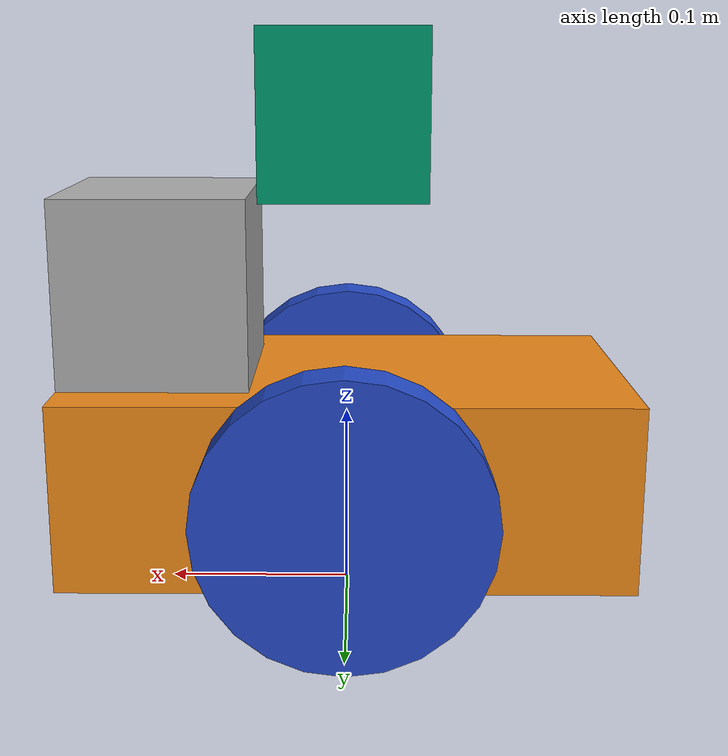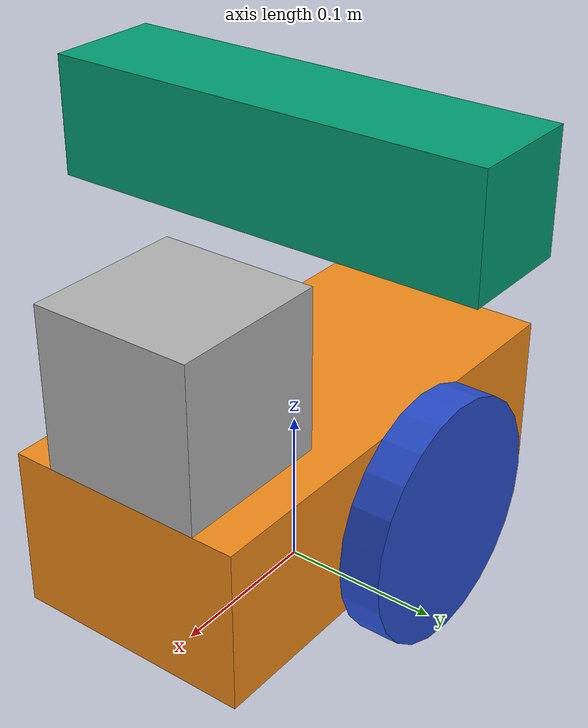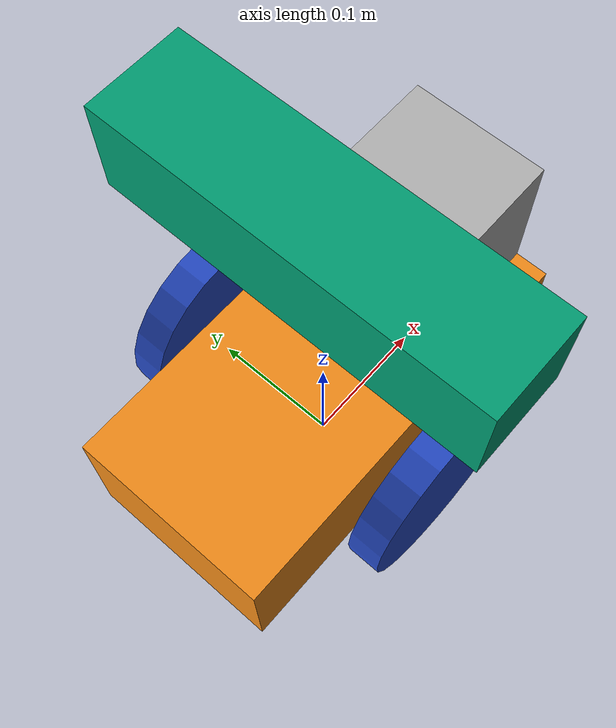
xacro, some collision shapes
<?xml version="1.0"?>
<!--
    - Base      : isgmrobot
    - 3d Sensor : kinect
-->
<robot name="isgmrobot" xmlns:xacro="http://ros.org/wiki/xacro">

  <xacro:include filename="$(find mybot_description)/urdf/mybot.xacro"/>
  <xacro:include filename="$(find mybot_description)/urdf/sensors/kinect.urdf.xacro"/>

  <xacro:sensor_kinect parent="base_link"/>
</robot>

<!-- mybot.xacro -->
<robot name="myrobot" xmlns:xacro="http://www.ros.org/wiki/xacro">

  <xacro:property name="cameraSize" value="0.05"/>
  <xacro:property name="cameraMass" value="0.15"/>
  <xacro:property name="wheeldiam" value="0.15" />
  <xacro:property name="wheel_separation" value="0.20"/>
  <xacro:property name="M_PI" value="3.1415926535897931" />
  <xacro:property name="chassis_len" value="0.3" />

  <xacro:include filename="$(find mybot_description)/urdf/materials.xacro" />
  <xacro:include filename="$(find mybot_description)/urdf/mybot.gazebo.xacro" />

  <link name="base_link" />

  <!-- for robot base frame -->
  <link name='chassis'>

    <visual>
      <origin xyz="0 0 0" rpy="0 0 0"/>
      <geometry>
        <box size="${chassis_len} ${wheel_separation - 0.05} .1"/>
      </geometry>
      <material name="orange"/>
    </visual>

    <collision>
      <geometry>
        <box size="${chassis_len} ${wheel_separation - 0.05} .1"/>
      </geometry>
    </collision>

    <inertial>
      <mass value="15.0"/>
      <inertia
          ixx="0.5" ixy="0" ixz="0"
          iyy="1.0" iyz="0"
          izz="0.1"
      />
    </inertial>
  </link>

  <joint name="base_to_chassis_joint" type="fixed">
    <parent link="base_link"/>
    <child link="chassis"/>
    <origin xyz="0 0 ${wheeldiam/2}"/>
  </joint>

<!-- for caster -->
  <xacro:macro name="caster_visual" params="prefix reflect">
    <link name='${prefix}_caster_visual'>
      <visual>
        <geometry>
          <sphere radius="${wheeldiam/4}"/>
        </geometry>
      </visual>

      <collision>
        <geometry>
          <sphere radius="${wheeldiam/4}"/>
        </geometry>
        <surface>
          <friction>
            <ode>
              <mu>0</mu>
              <mu2>0</mu2>
              <slip1>1.0</slip1>
              <slip2>1.0</slip2>
            </ode>
          </friction>
        </surface>
      </collision>

      <inertial>
        <mass value="0.1"/>
        <origin xyz="0.0 0 0.1" rpy="0 0 0"/>
        <inertia
            ixx="0.5" ixy="0" ixz="0"
            iyy="1.0" iyz="0"
            izz="0.1"
        />
      </inertial>
    </link>

    <joint name="${prefix}_chassis_joint" type="fixed">
        <parent link="chassis"/>
        <child link="${prefix}_caster_visual"/>
        <origin xyz="${reflect*wheel_separation/2} 0 -${wheeldiam/4}"/>
    </joint>
  </xacro:macro>

  <xacro:caster_visual prefix="front" reflect="1"/>
  <xacro:caster_visual prefix="back" reflect="-1"/>

<!-- for wheel -->
  <xacro:macro name="wheel" params="prefix reflect">

    <link name="${prefix}_wheel">
      <visual>
        <origin xyz="0 0 0" rpy="${M_PI/2} 0 0"/>
        <geometry>
          <cylinder radius="${wheeldiam/2}" length="0.025"/>
        </geometry>
        <material name="blue"/>
      </visual>

      <collision>
        <origin xyz="0 0 0" rpy="${M_PI/2} 0 0"/>
        <geometry>
          <cylinder radius="${wheeldiam/2}" length="0.05"/>
        </geometry>
      </collision>

      <inertial>
        <origin xyz="0 0 0" rpy="${M_PI/2} 0 0"/>
        <mass value="2.5"/>
        <cylinder_inertia m="5" r="0.1" h="0.05"/>
        <inertia
          ixx="1.0" ixy="0.0" ixz="0.0"
          iyy="1.0" iyz="0.0"
          izz="1.0"/>
      </inertial>
    </link>

    <joint name="${prefix}_wheel_hinge" type="continuous">
      <origin xyz="0 ${reflect*wheel_separation/2} 0" rpy="0 0 0"/>
      <child link="${prefix}_wheel"/>
      <parent link="chassis"/>
      <axis xyz="0 1 0" rpy="0 0 0"/>
      <limit effort="100" velocity="100"/>
      <joint_properties damping="0.0" friction="0.0"/>
    </joint>

  </xacro:macro>

  <xacro:wheel prefix="right" reflect="-1" />
  <xacro:wheel prefix="left" reflect="1" />

  <!-- for camera  -->
  <link name="camera">
    <collision>
      <origin xyz="0 0 0" rpy="0 0 0"/>
      <geometry>
        <box size="${cameraSize} ${cameraSize} ${cameraSize}"/>
      </geometry>
    </collision>

    <visual>
      <origin xyz="0 0 0" rpy="0 0 0"/>
      <geometry>
        <box size="${cameraSize} ${cameraSize} ${cameraSize}"/>
      </geometry>
      <material name="green"/>
    </visual>

    <inertial>
      <mass value="${cameraMass}" />
      <origin xyz="0 0 0" rpy="0 0 0"/>
      <box_inertia m="${cameraMass}" x="${cameraSize}" y="${cameraSize}" z="${cameraSize}" />
      <inertia ixx="1e-6" ixy="0" ixz="0" iyy="1e-6" iyz="0" izz="1e-6" />
    </inertial>

  </link>

  <joint name="camera_joint" type="fixed">
    <axis xyz="0 1 0" />
    <origin xyz="${wheel_separation/2} 0 ${0.05 + cameraSize/2}" rpy="0 0 0"/>
    <parent link="chassis"/>
    <child link="camera"/>
  </joint>

  <!-- Hokuyo Laser -->
  <link name="hokuyo">
    <visual>
      <origin xyz="0 0 0" rpy="0 0 0"/>
      <geometry>
        <mesh filename="package://mybot_description/meshes/hokuyo.dae"/>
      </geometry>
    </visual>

    <collision>
      <origin xyz="0 0 0" rpy="0 0 0"/>
      <geometry>
        <box size="0.1 0.1 0.1"/>
      </geometry>
    </collision>

    <inertial>
      <mass value="1e-5" />
      <origin xyz="0 0 0" rpy="0 0 0"/>
      <inertia ixx="1e-6" ixy="0" ixz="0" iyy="1e-6" iyz="0" izz="1e-6" />
    </inertial>

  </link>

  <joint name="hokuyo_joint" type="fixed">
    <axis xyz="0 1 0" />
    <origin xyz="${wheel_separation/2} 0 ${0.1}" rpy="0 0 0"/>
    <parent link="chassis"/>
    <child link="hokuyo"/>
  </joint>

</robot>

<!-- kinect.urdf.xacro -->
<robot name="sensor_kinect" xmlns:xacro="http://ros.org/wiki/xacro">
  <xacro:include filename="$(find mybot_description)/urdf/sensors/kinect_camera_gazebo.urdf.xacro"/>
  <xacro:include filename="$(find mybot_description)/urdf/sensors/kinect_camera_properties.urdf.xacro"/>

  <xacro:property name="kinect_cam_py" value="-0.0125"/>
  <!-- Parameterised in part by the values in turtlebot_properties.urdf.xacro -->
  <xacro:macro name="sensor_kinect" params="parent">
    <joint name="camera_rgb_joint" type="fixed">
      <origin xyz="${cam_px} ${kinect_cam_py} ${cam_pz}" rpy="${cam_or} ${cam_op} ${cam_oy}"/>
      <parent link="${parent}"/>
      <child link="camera_rgb_frame" />
    </joint>
    <link name="camera_rgb_frame"/>

    <joint name="camera_rgb_optical_joint" type="fixed">
      <origin xyz="0 0 0" rpy="${-M_PI/2} 0 ${-M_PI/2}" />
      <parent link="camera_rgb_frame" />
      <child link="camera_rgb_optical_frame" />
    </joint>
    <link name="camera_rgb_optical_frame"/>

    <joint name="camera_joint" type="fixed">
      <origin xyz="0 ${-kinect_cam_py} -0.016" rpy="0 0 0"/>
      <parent link="camera_rgb_frame"/>
      <child link="camera_link"/>
    </joint>
      <link name="camera_link">
      <visual>
       <origin xyz="0 0 0" rpy="0 0 ${M_PI/2}"/>
        <geometry>
         <mesh filename="package://mybot_description/meshes/sensors/kinect.dae"/>
        </geometry>
      </visual>
  	  <collision>
        <origin xyz="0.0 0.0 0.0" rpy="0 0 0"/>
  	    <geometry>
  	      <box size="0.07271 0.27794 0.073"/>
  	    </geometry>
  	  </collision>
      <inertial>
        <mass value="0.564" />
        <origin xyz="0 0 0" />
        <inertia ixx="0.003881243" ixy="0.0" ixz="0.0"
                 iyy="0.000498940" iyz="0.0"
                 izz="0.003879257" />
      </inertial>
    </link>

    <joint name="camera_depth_joint" type="fixed">
      <origin xyz="0 ${2 * -kinect_cam_py} 0" rpy="0 0 0" />
      <parent link="camera_rgb_frame" />
      <child link="camera_depth_frame" />
    </joint>
    <link name="camera_depth_frame"/>

	  <joint name="camera_depth_optical_joint" type="fixed">
      <origin xyz="0 0 0" rpy="${-M_PI/2} 0 ${-M_PI/2}" />
      <parent link="camera_depth_frame" />
      <child link="camera_depth_optical_frame" />
    </joint>
    <link name="camera_depth_optical_frame"/>

    <!-- Kinect sensor for simulation -->
    <xacro:kinet_camera_sim_3dsensor/>
  </xacro:macro>

</robot>

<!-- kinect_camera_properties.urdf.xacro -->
<robot xmlns:xacro="http://ros.org/wiki/xacro">
  <!--
    These properties must be observed by any machine
    that wants to be defined as a turtlebot. Refer
    to the REP for more details.

    http://www.ros.org/reps/rep-0119.html
   -->

  <xacro:property name="cam_px" value="0" />
	<xacro:property name="cam_pz" value="0.2870" />
	<xacro:property name="cam_or" value="0" />
	<xacro:property name="cam_op" value="0" />
	<xacro:property name="cam_oy" value="0" />

  <xacro:property name="M_PI" value="3.1415926535897931" />
</robot>
